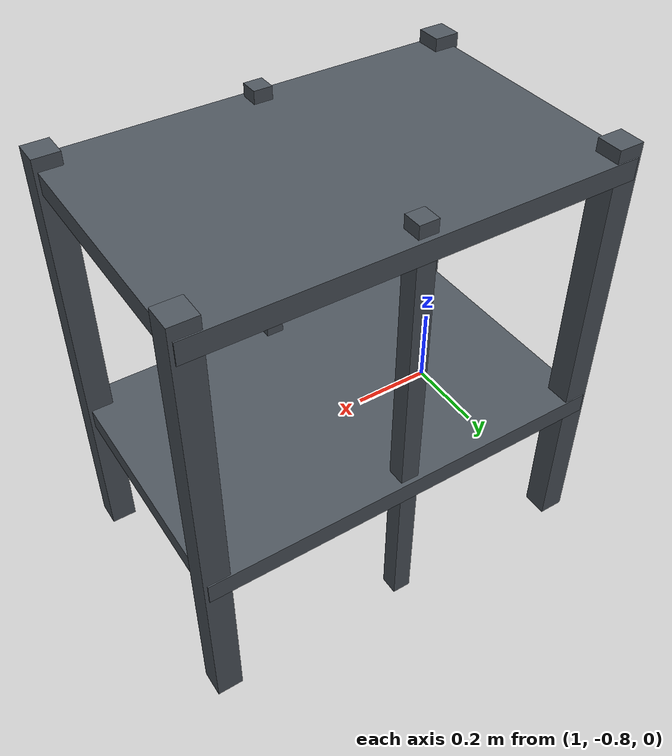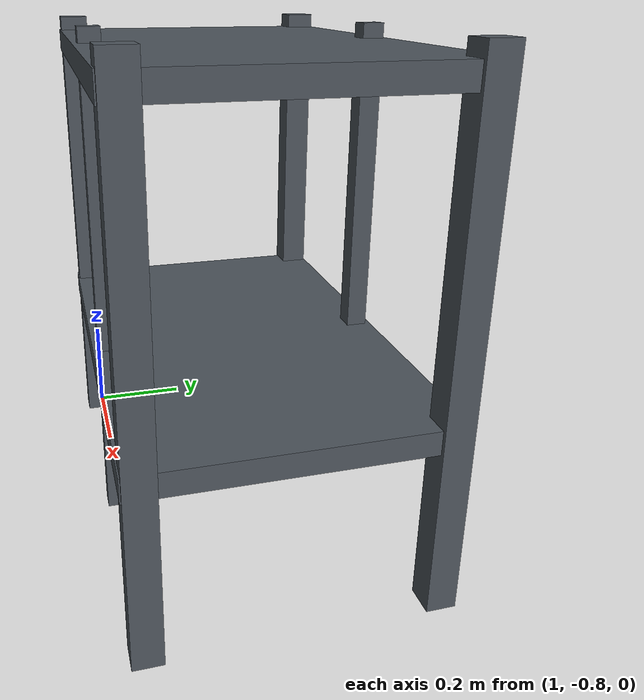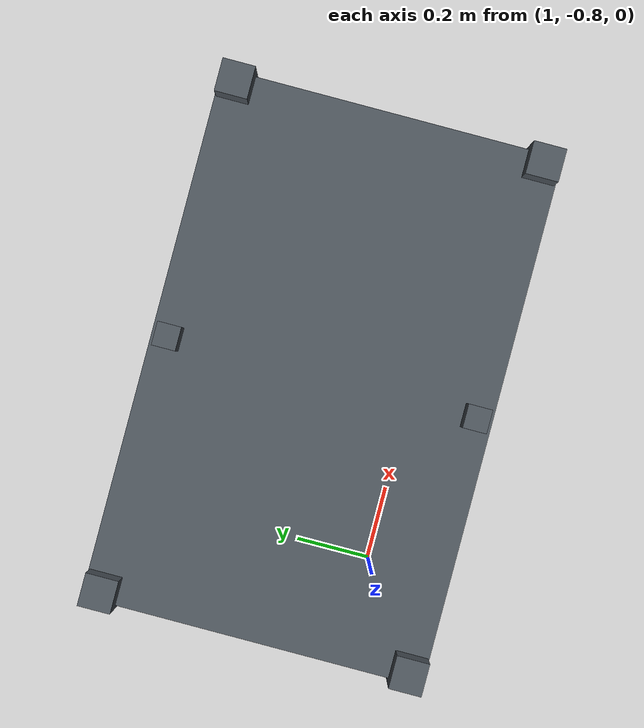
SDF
<sdf version="1.8">
 <world name="ahead_workcell_v4_2_physical_scale">
  <model name="buffer_rack">
   <static>true</static>
   <pose>1.45 -0.55 0 0 0 0</pose>
   <link name="rack_link">
    <collision name="post_fl_collision">
     <pose>-0.43 -0.26 0.485 0 0 0</pose>
     <geometry><box><size>0.055 0.055 0.97</size></box></geometry>
    </collision>
    <visual name="post_fl_visual">
     <pose>-0.43 -0.26 0.485 0 0 0</pose>
     <geometry><box><size>0.055 0.055 0.97</size></box></geometry>
     <material><ambient>0.15 0.17 0.19 1</ambient><diffuse>0.30 0.33 0.36 1</diffuse></material>
    </visual>
    <collision name="post_fr_collision">
     <pose>0.43 -0.26 0.485 0 0 0</pose>
     <geometry><box><size>0.055 0.055 0.97</size></box></geometry>
    </collision>
    <visual name="post_fr_visual">
     <pose>0.43 -0.26 0.485 0 0 0</pose>
     <geometry><box><size>0.055 0.055 0.97</size></box></geometry>
     <material><ambient>0.15 0.17 0.19 1</ambient><diffuse>0.30 0.33 0.36 1</diffuse></material>
    </visual>
    <collision name="post_bl_collision">
     <pose>-0.43 0.26 0.485 0 0 0</pose>
     <geometry><box><size>0.055 0.055 0.97</size></box></geometry>
    </collision>
    <visual name="post_bl_visual">
     <pose>-0.43 0.26 0.485 0 0 0</pose>
     <geometry><box><size>0.055 0.055 0.97</size></box></geometry>
     <material><ambient>0.15 0.17 0.19 1</ambient><diffuse>0.30 0.33 0.36 1</diffuse></material>
    </visual>
    <collision name="post_br_collision">
     <pose>0.43 0.26 0.485 0 0 0</pose>
     <geometry><box><size>0.055 0.055 0.97</size></box></geometry>
    </collision>
    <visual name="post_br_visual">
     <pose>0.43 0.26 0.485 0 0 0</pose>
     <geometry><box><size>0.055 0.055 0.97</size></box></geometry>
     <material><ambient>0.15 0.17 0.19 1</ambient><diffuse>0.30 0.33 0.36 1</diffuse></material>
    </visual>
    <collision name="divider_front_collision">
     <pose>0 -0.26 0.485 0 0 0</pose>
     <geometry><box><size>0.04 0.04 0.97</size></box></geometry>
    </collision>
    <visual name="divider_front_visual">
     <pose>0 -0.26 0.485 0 0 0</pose>
     <geometry><box><size>0.04 0.04 0.97</size></box></geometry>
     <material><ambient>0.15 0.17 0.19 1</ambient><diffuse>0.30 0.33 0.36 1</diffuse></material>
    </visual>
    <collision name="divider_back_collision">
     <pose>0 0.26 0.485 0 0 0</pose>
     <geometry><box><size>0.04 0.04 0.97</size></box></geometry>
    </collision>
    <visual name="divider_back_visual">
     <pose>0 0.26 0.485 0 0 0</pose>
     <geometry><box><size>0.04 0.04 0.97</size></box></geometry>
     <material><ambient>0.15 0.17 0.19 1</ambient><diffuse>0.30 0.33 0.36 1</diffuse></material>
    </visual>
    <collision name="shelf_0_collision">
     <pose>0 0 0.34 0 0 0</pose>
     <geometry><box><size>0.90 0.58 0.045</size></box></geometry>
    </collision>
    <visual name="shelf_0_visual">
     <pose>0 0 0.34 0 0 0</pose>
     <geometry><box><size>0.90 0.58 0.045</size></box></geometry>
     <material><ambient>0.15 0.17 0.19 1</ambient><diffuse>0.30 0.33 0.36 1</diffuse></material>
    </visual>
    <collision name="shelf_1_collision">
     <pose>0 0 0.92 0 0 0</pose>
     <geometry><box><size>0.90 0.58 0.045</size></box></geometry>
    </collision>
    <visual name="shelf_1_visual">
     <pose>0 0 0.92 0 0 0</pose>
     <geometry><box><size>0.90 0.58 0.045</size></box></geometry>
     <material><ambient>0.15 0.17 0.19 1</ambient><diffuse>0.30 0.33 0.36 1</diffuse></material>
    </visual>
   </link>
  </model>
 </world>
</sdf>
